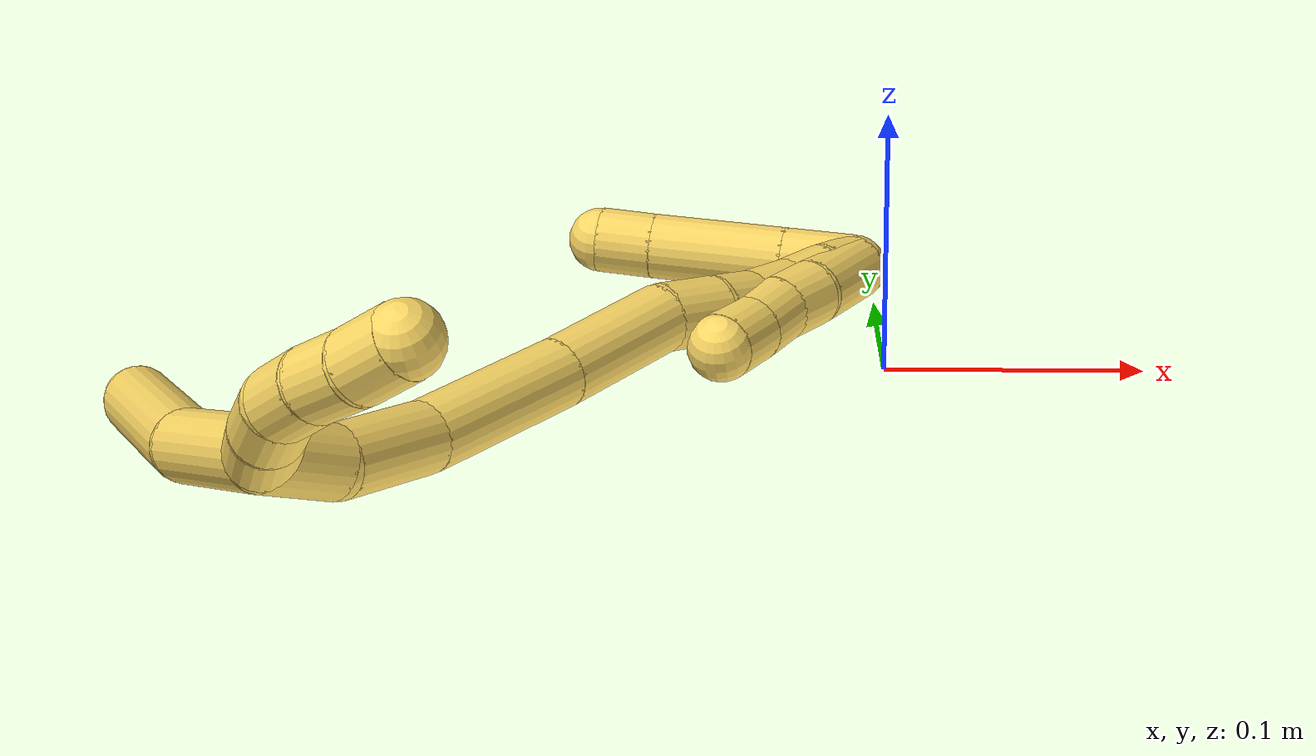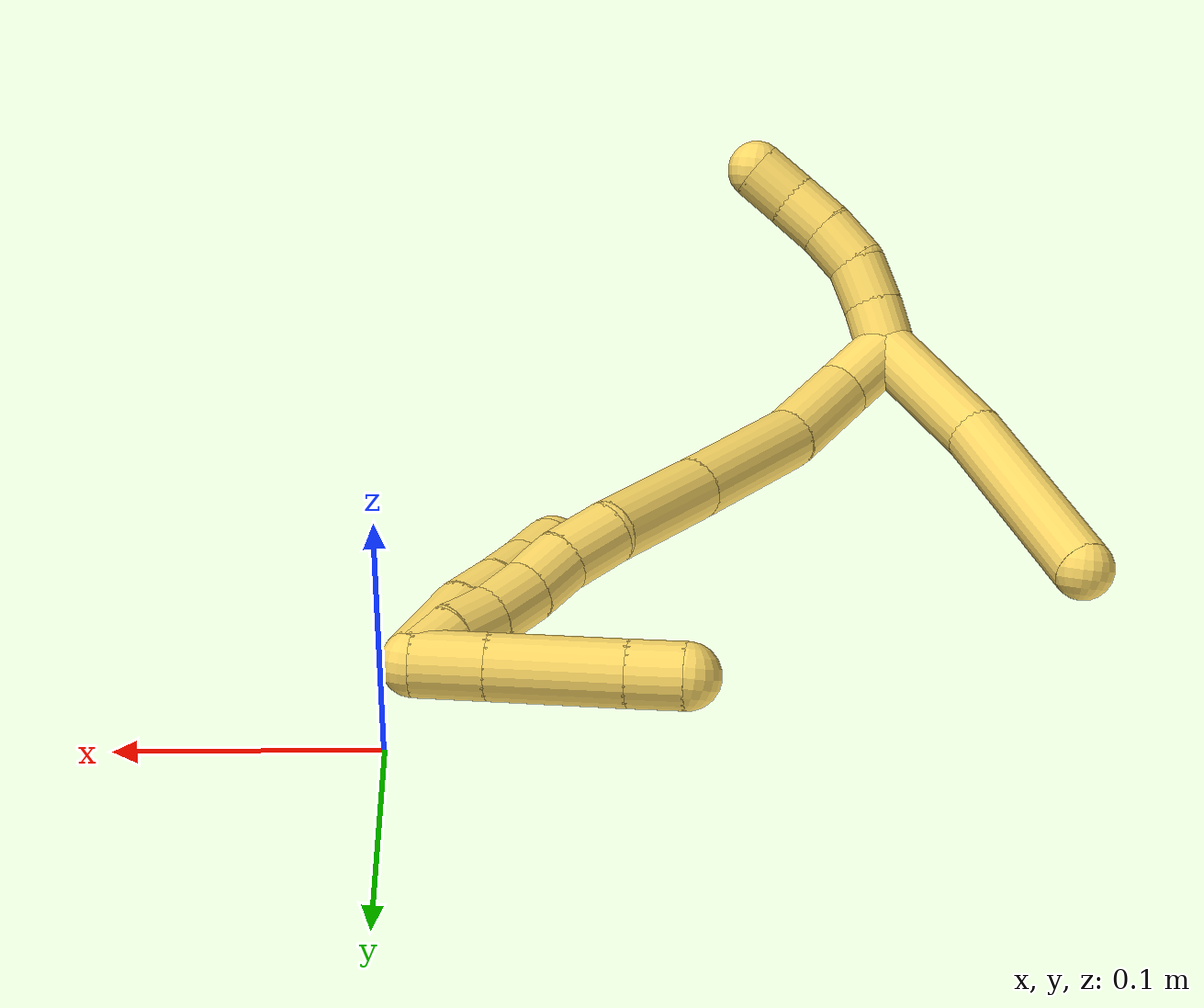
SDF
<sdf version="1.7">
 <world name="default">
  <model name="5">
   <static>0</static>
   <link name="5">
    <collision name="collision-cylinder-e_1_2_8">
     <pose>-0.024191 0.006879 -0.015647 -2.72739 -0.955692 2.37074</pose>
     <geometry><cylinder><radius>0.0125</radius><length>0.05924</length></cylinder></geometry>
     <surface>
      <friction><ode><mu>1.16</mu><mu2>1.16</mu2><slip1>0</slip1><slip2>0</slip2></ode></friction>
      <contact><ode><kp>1e+06</kp><kd>1</kd><max_vel>0</max_vel><min_depth>0.001</min_depth></ode></contact>
     </surface>
    </collision>
    <visual name="visual-cylinder-e_1_2_8">
     <pose>-0.024191 0.006879 -0.015647 -2.72739 -0.955692 2.37074</pose>
     <geometry><cylinder><radius>0.0125</radius><length>0.05924</length></cylinder></geometry>
     <material><ambient>1 0.858824 0.4 1</ambient></material>
    </visual>
    <collision name="collision-cylinder-e_2_8_6">
     <pose>-0.081163 0.034158 -0.055138 -2.43389 -0.807218 1.71533</pose>
     <geometry><cylinder><radius>0.0125</radius><length>0.09076</length></cylinder></geometry>
     <surface>
      <friction><ode><mu>1.16</mu><mu2>1.16</mu2><slip1>0</slip1><slip2>0</slip2></ode></friction>
      <contact><ode><kp>1e+06</kp><kd>1</kd><max_vel>0</max_vel><min_depth>0.001</min_depth></ode></contact>
     </surface>
    </collision>
    <visual name="visual-cylinder-e_2_8_6">
     <pose>-0.081163 0.034158 -0.055138 -2.43389 -0.807218 1.71533</pose>
     <geometry><cylinder><radius>0.0125</radius><length>0.09076</length></cylinder></geometry>
     <material><ambient>1 0.858824 0.4 1</ambient></material>
    </visual>
    <collision name="collision-cylinder-e_1_2_9">
     <pose>0.004634 -0.001234 0.008775 0.139692 0.48184 0.034374</pose>
     <geometry><cylinder><radius>0.0125</radius><length>0.02</length></cylinder></geometry>
     <surface>
      <friction><ode><mu>1.16</mu><mu2>1.16</mu2><slip1>0</slip1><slip2>0</slip2></ode></friction>
      <contact><ode><kp>1e+06</kp><kd>1</kd><max_vel>0</max_vel><min_depth>0.001</min_depth></ode></contact>
     </surface>
    </collision>
    <visual name="visual-cylinder-e_1_2_9">
     <pose>0.004634 -0.001234 0.008775 0.139692 0.48184 0.034374</pose>
     <geometry><cylinder><radius>0.0125</radius><length>0.02</length></cylinder></geometry>
     <material><ambient>1 0.858824 0.4 1</ambient></material>
    </visual>
    <collision name="collision-cylinder-e_2_9_10">
     <pose>0.014366 -0.002737 0.026149 0.031268 0.534873 0.008568</pose>
     <geometry><cylinder><radius>0.0125</radius><length>0.02</length></cylinder></geometry>
     <surface>
      <friction><ode><mu>1.16</mu><mu2>1.16</mu2><slip1>0</slip1><slip2>0</slip2></ode></friction>
      <contact><ode><kp>1e+06</kp><kd>1</kd><max_vel>0</max_vel><min_depth>0.001</min_depth></ode></contact>
     </surface>
    </collision>
    <visual name="visual-cylinder-e_2_9_10">
     <pose>0.014366 -0.002737 0.026149 0.031268 0.534873 0.008568</pose>
     <geometry><cylinder><radius>0.0125</radius><length>0.02</length></cylinder></geometry>
     <material><ambient>1 0.858824 0.4 1</ambient></material>
    </visual>
    <collision name="collision-cylinder-e_3_10_11">
     <pose>0.026942 -0.002185 0.041335 -0.1239 0.844985 -0.055758</pose>
     <geometry><cylinder><radius>0.0125</radius><length>0.02</length></cylinder></geometry>
     <surface>
      <friction><ode><mu>1.16</mu><mu2>1.16</mu2><slip1>0</slip1><slip2>0</slip2></ode></friction>
      <contact><ode><kp>1e+06</kp><kd>1</kd><max_vel>0</max_vel><min_depth>0.001</min_depth></ode></contact>
     </surface>
    </collision>
    <visual name="visual-cylinder-e_3_10_11">
     <pose>0.026942 -0.002185 0.041335 -0.1239 0.844985 -0.055758</pose>
     <geometry><cylinder><radius>0.0125</radius><length>0.02</length></cylinder></geometry>
     <material><ambient>1 0.858824 0.4 1</ambient></material>
    </visual>
    <collision name="collision-cylinder-e_4_11_12">
     <pose>0.042589 -9e-06 0.05353 -0.237187 0.955688 -0.123256</pose>
     <geometry><cylinder><radius>0.0125</radius><length>0.02</length></cylinder></geometry>
     <surface>
      <friction><ode><mu>1.16</mu><mu2>1.16</mu2><slip1>0</slip1><slip2>0</slip2></ode></friction>
      <contact><ode><kp>1e+06</kp><kd>1</kd><max_vel>0</max_vel><min_depth>0.001</min_depth></ode></contact>
     </surface>
    </collision>
    <visual name="visual-cylinder-e_4_11_12">
     <pose>0.042589 -9e-06 0.05353 -0.237187 0.955688 -0.123256</pose>
     <geometry><cylinder><radius>0.0125</radius><length>0.02</length></cylinder></geometry>
     <material><ambient>1 0.858824 0.4 1</ambient></material>
    </visual>
    <collision name="collision-cylinder-e_5_12_5">
     <pose>0.058573 0.004172 0.0647 -0.470112 0.897351 -0.229571</pose>
     <geometry><cylinder><radius>0.0125</radius><length>0.02</length></cylinder></geometry>
     <surface>
      <friction><ode><mu>1.16</mu><mu2>1.16</mu2><slip1>0</slip1><slip2>0</slip2></ode></friction>
      <contact><ode><kp>1e+06</kp><kd>1</kd><max_vel>0</max_vel><min_depth>0.001</min_depth></ode></contact>
     </surface>
    </collision>
    <visual name="visual-cylinder-e_5_12_5">
     <pose>0.058573 0.004172 0.0647 -0.470112 0.897351 -0.229571</pose>
     <geometry><cylinder><radius>0.0125</radius><length>0.02</length></cylinder></geometry>
     <material><ambient>1 0.858824 0.4 1</ambient></material>
    </visual>
    <collision name="collision-cylinder-e_1_2_13">
     <pose>0.005387 0.009115 -0.009829 -2.39385 0.382136 -0.916119</pose>
     <geometry><cylinder><radius>0.0125</radius><length>0.028894</length></cylinder></geometry>
     <surface>
      <friction><ode><mu>1.16</mu><mu2>1.16</mu2><slip1>0</slip1><slip2>0</slip2></ode></friction>
      <contact><ode><kp>1e+06</kp><kd>1</kd><max_vel>0</max_vel><min_depth>0.001</min_depth></ode></contact>
     </surface>
    </collision>
    <visual name="visual-cylinder-e_1_2_13">
     <pose>0.005387 0.009115 -0.009829 -2.39385 0.382136 -0.916119</pose>
     <geometry><cylinder><radius>0.0125</radius><length>0.028894</length></cylinder></geometry>
     <material><ambient>1 0.858824 0.4 1</ambient></material>
    </visual>
    <collision name="collision-cylinder-e_2_13_14">
     <pose>0.014164 0.035374 -0.030973 -2.15419 0.163517 -0.302208</pose>
     <geometry><cylinder><radius>0.0125</radius><length>0.041639</length></cylinder></geometry>
     <surface>
      <friction><ode><mu>1.16</mu><mu2>1.16</mu2><slip1>0</slip1><slip2>0</slip2></ode></friction>
      <contact><ode><kp>1e+06</kp><kd>1</kd><max_vel>0</max_vel><min_depth>0.001</min_depth></ode></contact>
     </surface>
    </collision>
    <visual name="visual-cylinder-e_2_13_14">
     <pose>0.014164 0.035374 -0.030973 -2.15419 0.163517 -0.302208</pose>
     <geometry><cylinder><radius>0.0125</radius><length>0.041639</length></cylinder></geometry>
     <material><ambient>1 0.858824 0.4 1</ambient></material>
    </visual>
    <collision name="collision-cylinder-e_3_14_15">
     <pose>0.02422 0.081689 -0.05462 -1.97073 0.207479 -0.311541</pose>
     <geometry><cylinder><radius>0.0125</radius><length>0.064727</length></cylinder></geometry>
     <surface>
      <friction><ode><mu>1.16</mu><mu2>1.16</mu2><slip1>0</slip1><slip2>0</slip2></ode></friction>
      <contact><ode><kp>1e+06</kp><kd>1</kd><max_vel>0</max_vel><min_depth>0.001</min_depth></ode></contact>
     </surface>
    </collision>
    <visual name="visual-cylinder-e_3_14_15">
     <pose>0.02422 0.081689 -0.05462 -1.97073 0.207479 -0.311541</pose>
     <geometry><cylinder><radius>0.0125</radius><length>0.064727</length></cylinder></geometry>
     <material><ambient>1 0.858824 0.4 1</ambient></material>
    </visual>
    <collision name="collision-cylinder-e_4_15_16">
     <pose>0.036056 0.136198 -0.07681 -1.94189 0.187872 -0.273788</pose>
     <geometry><cylinder><radius>0.0125</radius><length>0.055355</length></cylinder></geometry>
     <surface>
      <friction><ode><mu>1.16</mu><mu2>1.16</mu2><slip1>0</slip1><slip2>0</slip2></ode></friction>
      <contact><ode><kp>1e+06</kp><kd>1</kd><max_vel>0</max_vel><min_depth>0.001</min_depth></ode></contact>
     </surface>
    </collision>
    <visual name="visual-cylinder-e_4_15_16">
     <pose>0.036056 0.136198 -0.07681 -1.94189 0.187872 -0.273788</pose>
     <geometry><cylinder><radius>0.0125</radius><length>0.055355</length></cylinder></geometry>
     <material><ambient>1 0.858824 0.4 1</ambient></material>
    </visual>
    <collision name="collision-cylinder-e_5_16_17">
     <pose>0.045765 0.171563 -0.092994 -2.13354 0.365824 -0.647191</pose>
     <geometry><cylinder><radius>0.0125</radius><length>0.025385</length></cylinder></geometry>
     <surface>
      <friction><ode><mu>1.16</mu><mu2>1.16</mu2><slip1>0</slip1><slip2>0</slip2></ode></friction>
      <contact><ode><kp>1e+06</kp><kd>1</kd><max_vel>0</max_vel><min_depth>0.001</min_depth></ode></contact>
     </surface>
    </collision>
    <visual name="visual-cylinder-e_5_16_17">
     <pose>0.045765 0.171563 -0.092994 -2.13354 0.365824 -0.647191</pose>
     <geometry><cylinder><radius>0.0125</radius><length>0.025385</length></cylinder></geometry>
     <material><ambient>1 0.858824 0.4 1</ambient></material>
    </visual>
    <collision name="collision-cylinder-e_6_17_18">
     <pose>0.052635 0.189959 -0.105431 -2.20152 0.221082 -0.430212</pose>
     <geometry><cylinder><radius>0.0125</radius><length>0.021249</length></cylinder></geometry>
     <surface>
      <friction><ode><mu>1.16</mu><mu2>1.16</mu2><slip1>0</slip1><slip2>0</slip2></ode></friction>
      <contact><ode><kp>1e+06</kp><kd>1</kd><max_vel>0</max_vel><min_depth>0.001</min_depth></ode></contact>
     </surface>
    </collision>
    <visual name="visual-cylinder-e_6_17_18">
     <pose>0.052635 0.189959 -0.105431 -2.20152 0.221082 -0.430212</pose>
     <geometry><cylinder><radius>0.0125</radius><length>0.021249</length></cylinder></geometry>
     <material><ambient>1 0.858824 0.4 1</ambient></material>
    </visual>
    <collision name="collision-cylinder-e_7_18_19">
     <pose>0.057603 0.20803 -0.116854 -2.07175 0.234175 -0.391922</pose>
     <geometry><cylinder><radius>0.0125</radius><length>0.022737</length></cylinder></geometry>
     <surface>
      <friction><ode><mu>1.16</mu><mu2>1.16</mu2><slip1>0</slip1><slip2>0</slip2></ode></friction>
      <contact><ode><kp>1e+06</kp><kd>1</kd><max_vel>0</max_vel><min_depth>0.001</min_depth></ode></contact>
     </surface>
    </collision>
    <visual name="visual-cylinder-e_7_18_19">
     <pose>0.057603 0.20803 -0.116854 -2.07175 0.234175 -0.391922</pose>
     <geometry><cylinder><radius>0.0125</radius><length>0.022737</length></cylinder></geometry>
     <material><ambient>1 0.858824 0.4 1</ambient></material>
    </visual>
    <collision name="collision-cylinder-e_8_19_20">
     <pose>0.062843 0.226614 -0.125958 -1.9743 0.263103 -0.395481</pose>
     <geometry><cylinder><radius>0.0125</radius><length>0.020009</length></cylinder></geometry>
     <surface>
      <friction><ode><mu>1.16</mu><mu2>1.16</mu2><slip1>0</slip1><slip2>0</slip2></ode></friction>
      <contact><ode><kp>1e+06</kp><kd>1</kd><max_vel>0</max_vel><min_depth>0.001</min_depth></ode></contact>
     </surface>
    </collision>
    <visual name="visual-cylinder-e_8_19_20">
     <pose>0.062843 0.226614 -0.125958 -1.9743 0.263103 -0.395481</pose>
     <geometry><cylinder><radius>0.0125</radius><length>0.020009</length></cylinder></geometry>
     <material><ambient>1 0.858824 0.4 1</ambient></material>
    </visual>
    <collision name="collision-cylinder-e_9_20_1">
     <pose>0.06731 0.243914 -0.134826 -2.11345 0.187559 -0.330076</pose>
     <geometry><cylinder><radius>0.0125</radius><length>0.020006</length></cylinder></geometry>
     <surface>
      <friction><ode><mu>1.16</mu><mu2>1.16</mu2><slip1>0</slip1><slip2>0</slip2></ode></friction>
      <contact><ode><kp>1e+06</kp><kd>1</kd><max_vel>0</max_vel><min_depth>0.001</min_depth></ode></contact>
     </surface>
    </collision>
    <visual name="visual-cylinder-e_9_20_1">
     <pose>0.06731 0.243914 -0.134826 -2.11345 0.187559 -0.330076</pose>
     <geometry><cylinder><radius>0.0125</radius><length>0.020006</length></cylinder></geometry>
     <material><ambient>1 0.858824 0.4 1</ambient></material>
    </visual>
    <collision name="collision-cylinder-e_1_1_21">
     <pose>0.055929 0.248488 -0.138695 1.26662 -1.2757 -0.99674</pose>
     <geometry><cylinder><radius>0.0125</radius><length>0.027688</length></cylinder></geometry>
     <surface>
      <friction><ode><mu>1.16</mu><mu2>1.16</mu2><slip1>0</slip1><slip2>0</slip2></ode></friction>
      <contact><ode><kp>1e+06</kp><kd>1</kd><max_vel>0</max_vel><min_depth>0.001</min_depth></ode></contact>
     </surface>
    </collision>
    <visual name="visual-cylinder-e_1_1_21">
     <pose>0.055929 0.248488 -0.138695 1.26662 -1.2757 -0.99674</pose>
     <geometry><cylinder><radius>0.0125</radius><length>0.027688</length></cylinder></geometry>
     <material><ambient>1 0.858824 0.4 1</ambient></material>
    </visual>
    <collision name="collision-cylinder-e_2_21_22">
     <pose>0.018279 0.237576 -0.135305 1.27117 -1.27636 -1.00133</pose>
     <geometry><cylinder><radius>0.0125</radius><length>0.051005</length></cylinder></geometry>
     <surface>
      <friction><ode><mu>1.16</mu><mu2>1.16</mu2><slip1>0</slip1><slip2>0</slip2></ode></friction>
      <contact><ode><kp>1e+06</kp><kd>1</kd><max_vel>0</max_vel><min_depth>0.001</min_depth></ode></contact>
     </surface>
    </collision>
    <visual name="visual-cylinder-e_2_21_22">
     <pose>0.018279 0.237576 -0.135305 1.27117 -1.27636 -1.00133</pose>
     <geometry><cylinder><radius>0.0125</radius><length>0.051005</length></cylinder></geometry>
     <material><ambient>1 0.858824 0.4 1</ambient></material>
    </visual>
    <collision name="collision-cylinder-e_3_22_4">
     <pose>-0.016352 0.227692 -0.132112 1.22645 -1.28649 -0.970841</pose>
     <geometry><cylinder><radius>0.0125</radius><length>0.021307</length></cylinder></geometry>
     <surface>
      <friction><ode><mu>1.16</mu><mu2>1.16</mu2><slip1>0</slip1><slip2>0</slip2></ode></friction>
      <contact><ode><kp>1e+06</kp><kd>1</kd><max_vel>0</max_vel><min_depth>0.001</min_depth></ode></contact>
     </surface>
    </collision>
    <visual name="visual-cylinder-e_3_22_4">
     <pose>-0.016352 0.227692 -0.132112 1.22645 -1.28649 -0.970841</pose>
     <geometry><cylinder><radius>0.0125</radius><length>0.021307</length></cylinder></geometry>
     <material><ambient>1 0.858824 0.4 1</ambient></material>
    </visual>
    <collision name="collision-cylinder-e_1_1_23">
     <pose>0.069145 0.235706 -0.130486 1.05547 -0.001604 -0.000935</pose>
     <geometry><cylinder><radius>0.0125</radius><length>0.03821</length></cylinder></geometry>
     <surface>
      <friction><ode><mu>1.16</mu><mu2>1.16</mu2><slip1>0</slip1><slip2>0</slip2></ode></friction>
      <contact><ode><kp>1e+06</kp><kd>1</kd><max_vel>0</max_vel><min_depth>0.001</min_depth></ode></contact>
     </surface>
    </collision>
    <visual name="visual-cylinder-e_1_1_23">
     <pose>0.069145 0.235706 -0.130486 1.05547 -0.001604 -0.000935</pose>
     <geometry><cylinder><radius>0.0125</radius><length>0.03821</length></cylinder></geometry>
     <material><ambient>1 0.858824 0.4 1</ambient></material>
    </visual>
    <collision name="collision-cylinder-e_2_23_24">
     <pose>0.067393 0.209775 -0.116707 1.13232 -0.165868 -0.105565</pose>
     <geometry><cylinder><radius>0.0125</radius><length>0.020845</length></cylinder></geometry>
     <surface>
      <friction><ode><mu>1.16</mu><mu2>1.16</mu2><slip1>0</slip1><slip2>0</slip2></ode></friction>
      <contact><ode><kp>1e+06</kp><kd>1</kd><max_vel>0</max_vel><min_depth>0.001</min_depth></ode></contact>
     </surface>
    </collision>
    <visual name="visual-cylinder-e_2_23_24">
     <pose>0.067393 0.209775 -0.116707 1.13232 -0.165868 -0.105565</pose>
     <geometry><cylinder><radius>0.0125</radius><length>0.020845</length></cylinder></geometry>
     <material><ambient>1 0.858824 0.4 1</ambient></material>
    </visual>
    <collision name="collision-cylinder-e_3_24_25">
     <pose>0.065192 0.191129 -0.108437 1.17474 -0.047449 -0.031593</pose>
     <geometry><cylinder><radius>0.0125</radius><length>0.020269</length></cylinder></geometry>
     <surface>
      <friction><ode><mu>1.16</mu><mu2>1.16</mu2><slip1>0</slip1><slip2>0</slip2></ode></friction>
      <contact><ode><kp>1e+06</kp><kd>1</kd><max_vel>0</max_vel><min_depth>0.001</min_depth></ode></contact>
     </surface>
    </collision>
    <visual name="visual-cylinder-e_3_24_25">
     <pose>0.065192 0.191129 -0.108437 1.17474 -0.047449 -0.031593</pose>
     <geometry><cylinder><radius>0.0125</radius><length>0.020269</length></cylinder></geometry>
     <material><ambient>1 0.858824 0.4 1</ambient></material>
    </visual>
    <collision name="collision-cylinder-e_4_25_3">
     <pose>0.06413 0.172487 -0.10006 1.12265 -0.056249 -0.035375</pose>
     <geometry><cylinder><radius>0.0125</radius><length>0.020677</length></cylinder></geometry>
     <surface>
      <friction><ode><mu>1.16</mu><mu2>1.16</mu2><slip1>0</slip1><slip2>0</slip2></ode></friction>
      <contact><ode><kp>1e+06</kp><kd>1</kd><max_vel>0</max_vel><min_depth>0.001</min_depth></ode></contact>
     </surface>
    </collision>
    <visual name="visual-cylinder-e_4_25_3">
     <pose>0.06413 0.172487 -0.10006 1.12265 -0.056249 -0.035375</pose>
     <geometry><cylinder><radius>0.0125</radius><length>0.020677</length></cylinder></geometry>
     <material><ambient>1 0.858824 0.4 1</ambient></material>
    </visual>
    <collision name="collision-sphere-3">
     <pose>0.063548 0.163184 -0.095587 0 -0 0</pose>
     <geometry><sphere><radius>0.0125</radius></sphere></geometry>
     <surface>
      <friction><ode><mu>1.16</mu><mu2>1.16</mu2><slip1>0</slip1><slip2>0</slip2></ode></friction>
      <contact><ode><kp>1e+06</kp><kd>1</kd><max_vel>0</max_vel><min_depth>0.001</min_depth></ode></contact>
     </surface>
    </collision>
    <visual name="visual-sphere-3">
     <pose>0.063548 0.163184 -0.095587 0 -0 0</pose>
     <geometry><sphere><radius>0.0125</radius></sphere></geometry>
     <material><ambient>1 0.858824 0.4 1</ambient></material>
    </visual>
    <collision name="collision-sphere-25">
     <pose>0.064711 0.181789 -0.104532 0 -0 0</pose>
     <geometry><sphere><radius>0.0125</radius></sphere></geometry>
     <surface>
      <friction><ode><mu>1.16</mu><mu2>1.16</mu2><slip1>0</slip1><slip2>0</slip2></ode></friction>
      <contact><ode><kp>1e+06</kp><kd>1</kd><max_vel>0</max_vel><min_depth>0.001</min_depth></ode></contact>
     </surface>
    </collision>
    <visual name="visual-sphere-25">
     <pose>0.064711 0.181789 -0.104532 0 -0 0</pose>
     <geometry><sphere><radius>0.0125</radius></sphere></geometry>
     <material><ambient>1 0.858824 0.4 1</ambient></material>
    </visual>
    <collision name="collision-sphere-24">
     <pose>0.065672 0.200468 -0.112343 0 -0 0</pose>
     <geometry><sphere><radius>0.0125</radius></sphere></geometry>
     <surface>
      <friction><ode><mu>1.16</mu><mu2>1.16</mu2><slip1>0</slip1><slip2>0</slip2></ode></friction>
      <contact><ode><kp>1e+06</kp><kd>1</kd><max_vel>0</max_vel><min_depth>0.001</min_depth></ode></contact>
     </surface>
    </collision>
    <visual name="visual-sphere-24">
     <pose>0.065672 0.200468 -0.112343 0 -0 0</pose>
     <geometry><sphere><radius>0.0125</radius></sphere></geometry>
     <material><ambient>1 0.858824 0.4 1</ambient></material>
    </visual>
    <collision name="collision-sphere-23">
     <pose>0.069114 0.219082 -0.121071 0 -0 0</pose>
     <geometry><sphere><radius>0.0125</radius></sphere></geometry>
     <surface>
      <friction><ode><mu>1.16</mu><mu2>1.16</mu2><slip1>0</slip1><slip2>0</slip2></ode></friction>
      <contact><ode><kp>1e+06</kp><kd>1</kd><max_vel>0</max_vel><min_depth>0.001</min_depth></ode></contact>
     </surface>
    </collision>
    <visual name="visual-sphere-23">
     <pose>0.069114 0.219082 -0.121071 0 -0 0</pose>
     <geometry><sphere><radius>0.0125</radius></sphere></geometry>
     <material><ambient>1 0.858824 0.4 1</ambient></material>
    </visual>
    <collision name="collision-sphere-4">
     <pose>-0.026578 0.224879 -0.131103 0 -0 0</pose>
     <geometry><sphere><radius>0.0125</radius></sphere></geometry>
     <surface>
      <friction><ode><mu>1.16</mu><mu2>1.16</mu2><slip1>0</slip1><slip2>0</slip2></ode></friction>
      <contact><ode><kp>1e+06</kp><kd>1</kd><max_vel>0</max_vel><min_depth>0.001</min_depth></ode></contact>
     </surface>
    </collision>
    <visual name="visual-sphere-4">
     <pose>-0.026578 0.224879 -0.131103 0 -0 0</pose>
     <geometry><sphere><radius>0.0125</radius></sphere></geometry>
     <material><ambient>1 0.858824 0.4 1</ambient></material>
    </visual>
    <collision name="collision-sphere-22">
     <pose>-0.006126 0.230505 -0.13312 0 -0 0</pose>
     <geometry><sphere><radius>0.0125</radius></sphere></geometry>
     <surface>
      <friction><ode><mu>1.16</mu><mu2>1.16</mu2><slip1>0</slip1><slip2>0</slip2></ode></friction>
      <contact><ode><kp>1e+06</kp><kd>1</kd><max_vel>0</max_vel><min_depth>0.001</min_depth></ode></contact>
     </surface>
    </collision>
    <visual name="visual-sphere-22">
     <pose>-0.006126 0.230505 -0.13312 0 -0 0</pose>
     <geometry><sphere><radius>0.0125</radius></sphere></geometry>
     <material><ambient>1 0.858824 0.4 1</ambient></material>
    </visual>
    <collision name="collision-sphere-21">
     <pose>0.042684 0.244647 -0.137489 0 -0 0</pose>
     <geometry><sphere><radius>0.0125</radius></sphere></geometry>
     <surface>
      <friction><ode><mu>1.16</mu><mu2>1.16</mu2><slip1>0</slip1><slip2>0</slip2></ode></friction>
      <contact><ode><kp>1e+06</kp><kd>1</kd><max_vel>0</max_vel><min_depth>0.001</min_depth></ode></contact>
     </surface>
    </collision>
    <visual name="visual-sphere-21">
     <pose>0.042684 0.244647 -0.137489 0 -0 0</pose>
     <geometry><sphere><radius>0.0125</radius></sphere></geometry>
     <material><ambient>1 0.858824 0.4 1</ambient></material>
    </visual>
    <collision name="collision-sphere-1">
     <pose>0.069175 0.25233 -0.139901 0 -0 0</pose>
     <geometry><sphere><radius>0.0125</radius></sphere></geometry>
     <surface>
      <friction><ode><mu>1.16</mu><mu2>1.16</mu2><slip1>0</slip1><slip2>0</slip2></ode></friction>
      <contact><ode><kp>1e+06</kp><kd>1</kd><max_vel>0</max_vel><min_depth>0.001</min_depth></ode></contact>
     </surface>
    </collision>
    <visual name="visual-sphere-1">
     <pose>0.069175 0.25233 -0.139901 0 -0 0</pose>
     <geometry><sphere><radius>0.0125</radius></sphere></geometry>
     <material><ambient>1 0.858824 0.4 1</ambient></material>
    </visual>
    <collision name="collision-sphere-11">
     <pose>0.034422 -0.001365 0.047922 0 -0 0</pose>
     <geometry><sphere><radius>0.0125</radius></sphere></geometry>
     <surface>
      <friction><ode><mu>1.16</mu><mu2>1.16</mu2><slip1>0</slip1><slip2>0</slip2></ode></friction>
      <contact><ode><kp>1e+06</kp><kd>1</kd><max_vel>0</max_vel><min_depth>0.001</min_depth></ode></contact>
     </surface>
    </collision>
    <visual name="visual-sphere-11">
     <pose>0.034422 -0.001365 0.047922 0 -0 0</pose>
     <geometry><sphere><radius>0.0125</radius></sphere></geometry>
     <material><ambient>1 0.858824 0.4 1</ambient></material>
    </visual>
    <collision name="collision-sphere-10">
     <pose>0.019463 -0.003006 0.034748 0 -0 0</pose>
     <geometry><sphere><radius>0.0125</radius></sphere></geometry>
     <surface>
      <friction><ode><mu>1.16</mu><mu2>1.16</mu2><slip1>0</slip1><slip2>0</slip2></ode></friction>
      <contact><ode><kp>1e+06</kp><kd>1</kd><max_vel>0</max_vel><min_depth>0.001</min_depth></ode></contact>
     </surface>
    </collision>
    <visual name="visual-sphere-10">
     <pose>0.019463 -0.003006 0.034748 0 -0 0</pose>
     <geometry><sphere><radius>0.0125</radius></sphere></geometry>
     <material><ambient>1 0.858824 0.4 1</ambient></material>
    </visual>
    <collision name="collision-sphere-6">
     <pose>-0.113944 0.054558 -0.078983 0 -0 0</pose>
     <geometry><sphere><radius>0.0125</radius></sphere></geometry>
     <surface>
      <friction><ode><mu>1.16</mu><mu2>1.16</mu2><slip1>0</slip1><slip2>0</slip2></ode></friction>
      <contact><ode><kp>1e+06</kp><kd>1</kd><max_vel>0</max_vel><min_depth>0.001</min_depth></ode></contact>
     </surface>
    </collision>
    <visual name="visual-sphere-6">
     <pose>-0.113944 0.054558 -0.078983 0 -0 0</pose>
     <geometry><sphere><radius>0.0125</radius></sphere></geometry>
     <material><ambient>1 0.858824 0.4 1</ambient></material>
    </visual>
    <collision name="collision-sphere-9">
     <pose>0.009268 -0.002468 0.01755 0 -0 0</pose>
     <geometry><sphere><radius>0.0125</radius></sphere></geometry>
     <surface>
      <friction><ode><mu>1.16</mu><mu2>1.16</mu2><slip1>0</slip1><slip2>0</slip2></ode></friction>
      <contact><ode><kp>1e+06</kp><kd>1</kd><max_vel>0</max_vel><min_depth>0.001</min_depth></ode></contact>
     </surface>
    </collision>
    <visual name="visual-sphere-9">
     <pose>0.009268 -0.002468 0.01755 0 -0 0</pose>
     <geometry><sphere><radius>0.0125</radius></sphere></geometry>
     <material><ambient>1 0.858824 0.4 1</ambient></material>
    </visual>
    <collision name="collision-sphere-2">
     <geometry><sphere><radius>0.0125</radius></sphere></geometry>
     <surface>
      <friction><ode><mu>1.16</mu><mu2>1.16</mu2><slip1>0</slip1><slip2>0</slip2></ode></friction>
      <contact><ode><kp>1e+06</kp><kd>1</kd><max_vel>0</max_vel><min_depth>0.001</min_depth></ode></contact>
     </surface>
    </collision>
    <visual name="visual-sphere-2">
     <geometry><sphere><radius>0.0125</radius></sphere></geometry>
     <material><ambient>1 0.858824 0.4 1</ambient></material>
    </visual>
    <collision name="collision-sphere-19">
     <pose>0.060241 0.217729 -0.122165 0 -0 0</pose>
     <geometry><sphere><radius>0.0125</radius></sphere></geometry>
     <surface>
      <friction><ode><mu>1.16</mu><mu2>1.16</mu2><slip1>0</slip1><slip2>0</slip2></ode></friction>
      <contact><ode><kp>1e+06</kp><kd>1</kd><max_vel>0</max_vel><min_depth>0.001</min_depth></ode></contact>
     </surface>
    </collision>
    <visual name="visual-sphere-19">
     <pose>0.060241 0.217729 -0.122165 0 -0 0</pose>
     <geometry><sphere><radius>0.0125</radius></sphere></geometry>
     <material><ambient>1 0.858824 0.4 1</ambient></material>
    </visual>
    <collision name="collision-sphere-8">
     <pose>-0.048382 0.013758 -0.031294 0 -0 0</pose>
     <geometry><sphere><radius>0.0125</radius></sphere></geometry>
     <surface>
      <friction><ode><mu>1.16</mu><mu2>1.16</mu2><slip1>0</slip1><slip2>0</slip2></ode></friction>
      <contact><ode><kp>1e+06</kp><kd>1</kd><max_vel>0</max_vel><min_depth>0.001</min_depth></ode></contact>
     </surface>
    </collision>
    <visual name="visual-sphere-8">
     <pose>-0.048382 0.013758 -0.031294 0 -0 0</pose>
     <geometry><sphere><radius>0.0125</radius></sphere></geometry>
     <material><ambient>1 0.858824 0.4 1</ambient></material>
    </visual>
    <collision name="collision-sphere-12">
     <pose>0.050756 0.001347 0.059139 0 -0 0</pose>
     <geometry><sphere><radius>0.0125</radius></sphere></geometry>
     <surface>
      <friction><ode><mu>1.16</mu><mu2>1.16</mu2><slip1>0</slip1><slip2>0</slip2></ode></friction>
      <contact><ode><kp>1e+06</kp><kd>1</kd><max_vel>0</max_vel><min_depth>0.001</min_depth></ode></contact>
     </surface>
    </collision>
    <visual name="visual-sphere-12">
     <pose>0.050756 0.001347 0.059139 0 -0 0</pose>
     <geometry><sphere><radius>0.0125</radius></sphere></geometry>
     <material><ambient>1 0.858824 0.4 1</ambient></material>
    </visual>
    <collision name="collision-sphere-5">
     <pose>0.06639 0.006997 0.07026 0 -0 0</pose>
     <geometry><sphere><radius>0.0125</radius></sphere></geometry>
     <surface>
      <friction><ode><mu>1.16</mu><mu2>1.16</mu2><slip1>0</slip1><slip2>0</slip2></ode></friction>
      <contact><ode><kp>1e+06</kp><kd>1</kd><max_vel>0</max_vel><min_depth>0.001</min_depth></ode></contact>
     </surface>
    </collision>
    <visual name="visual-sphere-5">
     <pose>0.06639 0.006997 0.07026 0 -0 0</pose>
     <geometry><sphere><radius>0.0125</radius></sphere></geometry>
     <material><ambient>1 0.858824 0.4 1</ambient></material>
    </visual>
    <collision name="collision-sphere-13">
     <pose>0.010775 0.01823 -0.019658 0 -0 0</pose>
     <geometry><sphere><radius>0.0125</radius></sphere></geometry>
     <surface>
      <friction><ode><mu>1.16</mu><mu2>1.16</mu2><slip1>0</slip1><slip2>0</slip2></ode></friction>
      <contact><ode><kp>1e+06</kp><kd>1</kd><max_vel>0</max_vel><min_depth>0.001</min_depth></ode></contact>
     </surface>
    </collision>
    <visual name="visual-sphere-13">
     <pose>0.010775 0.01823 -0.019658 0 -0 0</pose>
     <geometry><sphere><radius>0.0125</radius></sphere></geometry>
     <material><ambient>1 0.858824 0.4 1</ambient></material>
    </visual>
    <collision name="collision-sphere-14">
     <pose>0.017553 0.052518 -0.042289 0 -0 0</pose>
     <geometry><sphere><radius>0.0125</radius></sphere></geometry>
     <surface>
      <friction><ode><mu>1.16</mu><mu2>1.16</mu2><slip1>0</slip1><slip2>0</slip2></ode></friction>
      <contact><ode><kp>1e+06</kp><kd>1</kd><max_vel>0</max_vel><min_depth>0.001</min_depth></ode></contact>
     </surface>
    </collision>
    <visual name="visual-sphere-14">
     <pose>0.017553 0.052518 -0.042289 0 -0 0</pose>
     <geometry><sphere><radius>0.0125</radius></sphere></geometry>
     <material><ambient>1 0.858824 0.4 1</ambient></material>
    </visual>
    <collision name="collision-sphere-15">
     <pose>0.030886 0.110859 -0.06695 0 -0 0</pose>
     <geometry><sphere><radius>0.0125</radius></sphere></geometry>
     <surface>
      <friction><ode><mu>1.16</mu><mu2>1.16</mu2><slip1>0</slip1><slip2>0</slip2></ode></friction>
      <contact><ode><kp>1e+06</kp><kd>1</kd><max_vel>0</max_vel><min_depth>0.001</min_depth></ode></contact>
     </surface>
    </collision>
    <visual name="visual-sphere-15">
     <pose>0.030886 0.110859 -0.06695 0 -0 0</pose>
     <geometry><sphere><radius>0.0125</radius></sphere></geometry>
     <material><ambient>1 0.858824 0.4 1</ambient></material>
    </visual>
    <collision name="collision-sphere-16">
     <pose>0.041225 0.161538 -0.086671 0 -0 0</pose>
     <geometry><sphere><radius>0.0125</radius></sphere></geometry>
     <surface>
      <friction><ode><mu>1.16</mu><mu2>1.16</mu2><slip1>0</slip1><slip2>0</slip2></ode></friction>
      <contact><ode><kp>1e+06</kp><kd>1</kd><max_vel>0</max_vel><min_depth>0.001</min_depth></ode></contact>
     </surface>
    </collision>
    <visual name="visual-sphere-16">
     <pose>0.041225 0.161538 -0.086671 0 -0 0</pose>
     <geometry><sphere><radius>0.0125</radius></sphere></geometry>
     <material><ambient>1 0.858824 0.4 1</ambient></material>
    </visual>
    <collision name="collision-sphere-17">
     <pose>0.050306 0.181588 -0.099318 0 -0 0</pose>
     <geometry><sphere><radius>0.0125</radius></sphere></geometry>
     <surface>
      <friction><ode><mu>1.16</mu><mu2>1.16</mu2><slip1>0</slip1><slip2>0</slip2></ode></friction>
      <contact><ode><kp>1e+06</kp><kd>1</kd><max_vel>0</max_vel><min_depth>0.001</min_depth></ode></contact>
     </surface>
    </collision>
    <visual name="visual-sphere-17">
     <pose>0.050306 0.181588 -0.099318 0 -0 0</pose>
     <geometry><sphere><radius>0.0125</radius></sphere></geometry>
     <material><ambient>1 0.858824 0.4 1</ambient></material>
    </visual>
    <collision name="collision-sphere-18">
     <pose>0.054965 0.19833 -0.111544 0 -0 0</pose>
     <geometry><sphere><radius>0.0125</radius></sphere></geometry>
     <surface>
      <friction><ode><mu>1.16</mu><mu2>1.16</mu2><slip1>0</slip1><slip2>0</slip2></ode></friction>
      <contact><ode><kp>1e+06</kp><kd>1</kd><max_vel>0</max_vel><min_depth>0.001</min_depth></ode></contact>
     </surface>
    </collision>
    <visual name="visual-sphere-18">
     <pose>0.054965 0.19833 -0.111544 0 -0 0</pose>
     <geometry><sphere><radius>0.0125</radius></sphere></geometry>
     <material><ambient>1 0.858824 0.4 1</ambient></material>
    </visual>
    <collision name="collision-sphere-20">
     <pose>0.065445 0.235498 -0.129751 0 -0 0</pose>
     <geometry><sphere><radius>0.0125</radius></sphere></geometry>
     <surface>
      <friction><ode><mu>1.16</mu><mu2>1.16</mu2><slip1>0</slip1><slip2>0</slip2></ode></friction>
      <contact><ode><kp>1e+06</kp><kd>1</kd><max_vel>0</max_vel><min_depth>0.001</min_depth></ode></contact>
     </surface>
    </collision>
    <visual name="visual-sphere-20">
     <pose>0.065445 0.235498 -0.129751 0 -0 0</pose>
     <geometry><sphere><radius>0.0125</radius></sphere></geometry>
     <material><ambient>1 0.858824 0.4 1</ambient></material>
    </visual>
    <inertial>
     <pose>0.017963 0.113646 -0.065493 0 -0 0</pose>
     <mass>0.75</mass>
     <inertia>
      <ixx>8.1e-05</ixx>
      <ixy>0</ixy>
      <ixz>0</ixz>
      <iyy>0.000107</iyy>
      <iyz>0</iyz>
      <izz>-1.8e-05</izz>
     </inertia>
    </inertial>
   </link>
   <pose>-0.202694 -0.226399 0.036043 0.55451 0.136618 -0.457417</pose>
  </model>
 </world>
</sdf>
